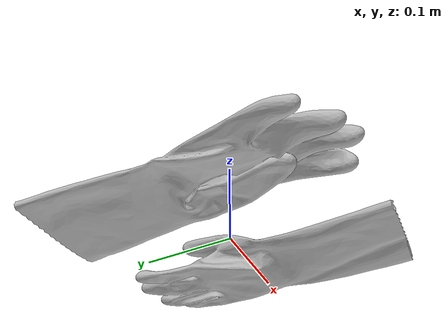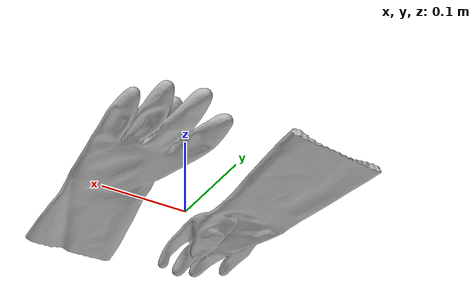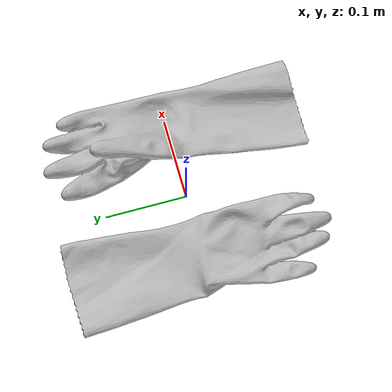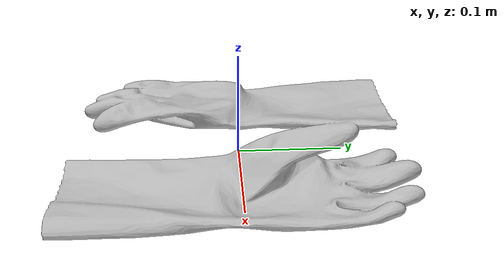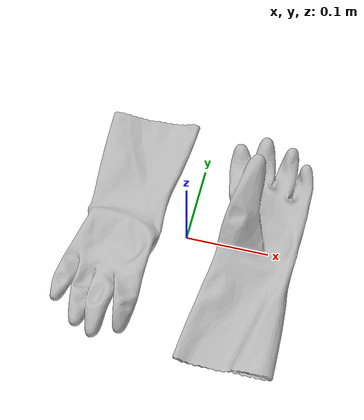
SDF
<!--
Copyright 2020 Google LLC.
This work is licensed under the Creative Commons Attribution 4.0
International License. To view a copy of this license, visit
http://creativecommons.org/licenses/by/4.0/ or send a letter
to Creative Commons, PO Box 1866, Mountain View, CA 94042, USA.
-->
<?xml version="1.0" ?>
<sdf version="1.6">
  <model name="Clorox_Premium_Choice_Gloves_SM_1_pair">
    <link name="link_0">
      <visual name="visual">
        <geometry>
          <mesh>
            <uri>meshes/model.obj</uri>
          </mesh>
        </geometry>
      </visual>
      <collision name="collision_0">
        <geometry>
          <mesh>
            <uri>meshes/model.obj</uri>
          </mesh>
        </geometry>
      </collision>
    </link>
  </model>
</sdf>
